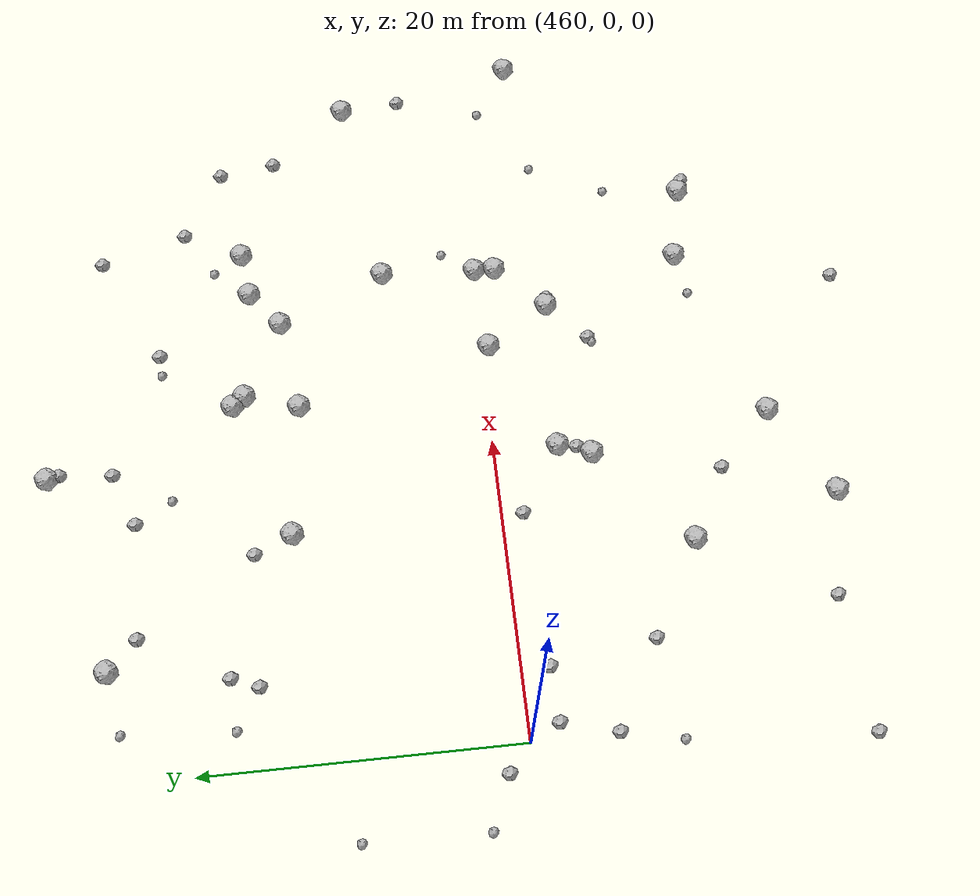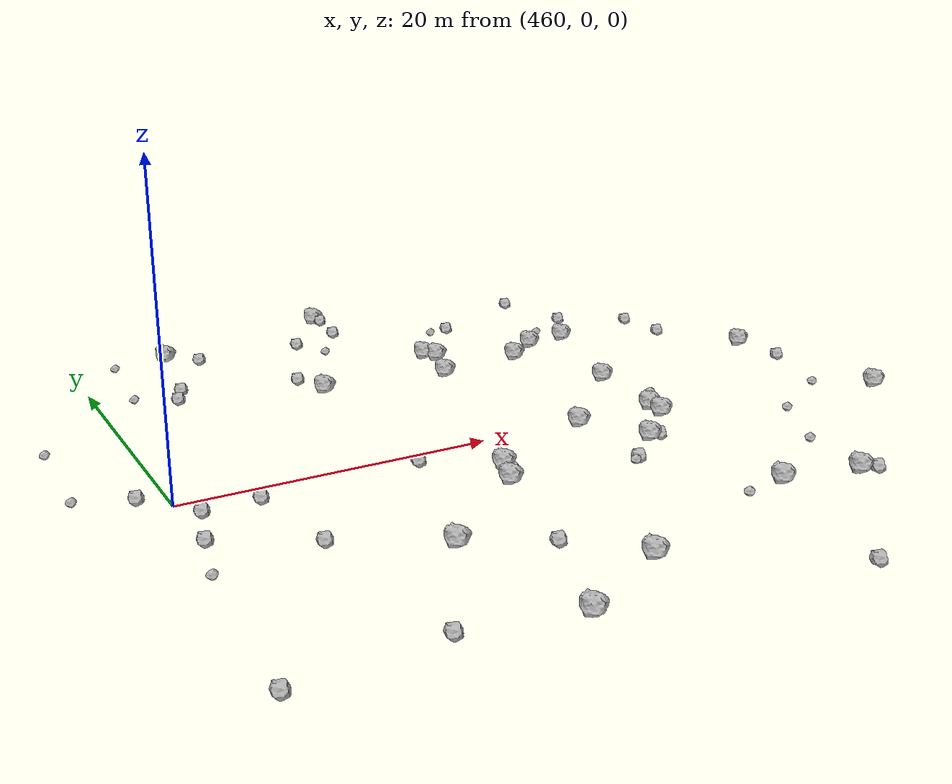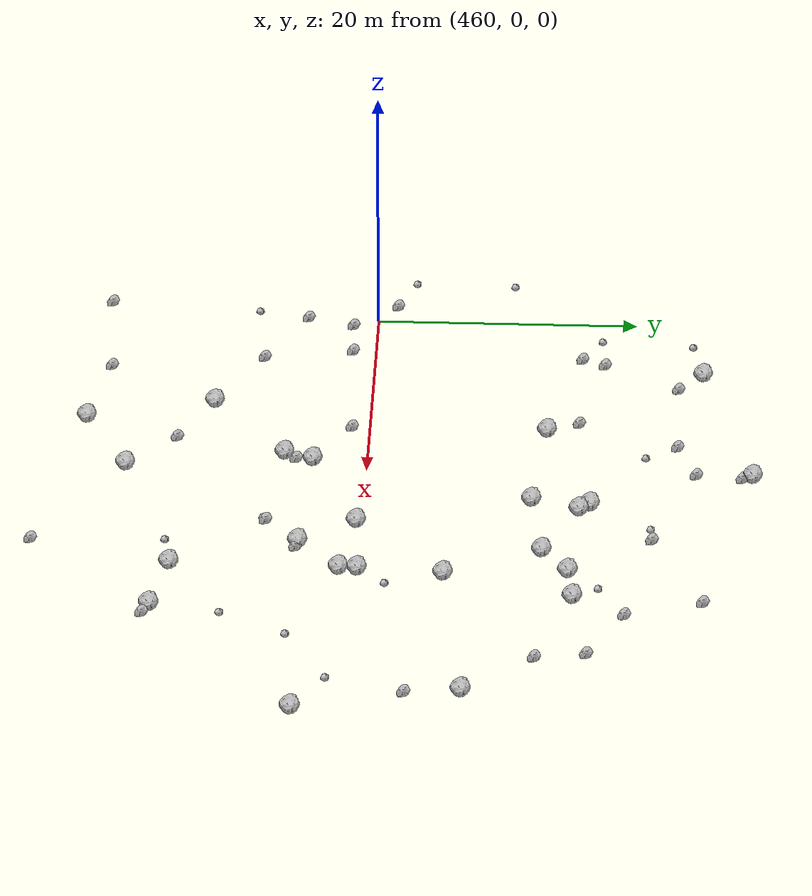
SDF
<sdf version="1.6">
 <world name="default">
  <include><uri>model://sun</uri></include>
  <model name="rock1_12_4">
   <include><uri>model://rock1</uri><pose>486.86013838064434 -0.4884319019038159 0.5 0 0 0</pose></include>
  </model>
  <model name="rock1_12_5">
   <include><uri>model://rock1</uri><pose>489.9266210349943 13.156496895798334 0.5 0 0 0</pose></include>
  </model>
  <model name="rock1_12_6">
   <include><uri>model://rock1</uri><pose>492.69744876082746 -0.17168924354060877 0.5 0 0 0</pose></include>
  </model>
  <model name="rock1_12_7">
   <include><uri>model://rock1</uri><pose>471.8873917272419 -11.869708311634305 0.5 0 0 0</pose></include>
  </model>
  <model name="rock1_12_8">
   <include><uri>model://rock1</uri><pose>492.6668185431703 -1.520162124362482 0.5 0 0 0</pose></include>
  </model>
  <model name="rock1_12_9">
   <include><uri>model://rock1</uri><pose>480.11751242205946 28.647174808679175 0.5 0 0 0</pose></include>
  </model>
  <model name="rock1_12_10">
   <include><uri>model://rock1</uri><pose>484.10376513091296 16.608469072448358 0.5 0 0 0</pose></include>
  </model>
  <model name="rock1_12_11">
   <include><uri>model://rock1</uri><pose>479.19427388841706 -4.083835757369894 0.5 0 0 0</pose></include>
  </model>
  <model name="rock1_12_12">
   <include><uri>model://rock1</uri><pose>480.3020505857839 -17.982167305948693 0.5 0 0 0</pose></include>
  </model>
  <model name="rock1_12_13">
   <include><uri>model://rock1</uri><pose>483.67944610007874 12.299751930897813 0.5 0 0 0</pose></include>
  </model>
  <model name="rock1_12_14">
   <include><uri>model://rock1</uri><pose>484.7572386601377 15.806579248530717 0.5 0 0 0</pose></include>
  </model>
  <model name="rock1_12_15">
   <include><uri>model://rock1</uri><pose>497.57591105705797 -14.879943452197399 0.5 0 0 0</pose></include>
  </model>
  <model name="rock1_12_16">
   <include><uri>model://rock1</uri><pose>478.43266873173764 -6.219736181007235 0.5 0 0 0</pose></include>
  </model>
  <model name="rock1_12_17">
   <include><uri>model://rock1</uri><pose>474.23405098866596 -21.386550135527926 0.5 0 0 0</pose></include>
  </model>
  <model name="rock1_12_18">
   <include><uri>model://rock1</uri><pose>509.1315431970535 -4.093376335242791 0.5 0 0 0</pose></include>
  </model>
  <model name="rock1_12_19">
   <include><uri>model://rock1</uri><pose>492.4978948183913 -13.825215360432043 0.5 0 0 0</pose></include>
  </model>
  <model name="rock1_12_20">
   <include><uri>model://rock1</uri><pose>493.04898669116267 6.072256623693711 0.5 0 0 0</pose></include>
  </model>
  <model name="rock1_12_21">
   <include><uri>model://rock1</uri><pose>466.9574232103233 25.07708336453767 0.5 0 0 0</pose></include>
  </model>
  <model name="rock1_12_22">
   <include><uri>model://rock1</uri><pose>492.38183995053583 15.086371422241442 0.5 0 0 0</pose></include>
  </model>
  <model name="rock1_12_23">
   <include><uri>model://rock1</uri><pose>495.47810714464714 15.455572780520093 0.5 0 0 0</pose></include>
  </model>
  <model name="rock1_12_24">
   <include><uri>model://rock1</uri><pose>489.5284103466534 -4.643972139875039 0.5 0 0 0</pose></include>
  </model>
  <model name="rock1_12_25">
   <include><uri>model://rock1</uri><pose>474.7846756536542 13.302003145255583 0.5 0 0 0</pose></include>
  </model>
  <model name="rock1_12_26">
   <include><uri>model://rock1</uri><pose>506.70081921021176 7.7694887383581275 0.5 0 0 0</pose></include>
  </model>
  <model name="rock2_12_0">
   <include><uri>model://rock2</uri><pose>480.0037200437101 24.482251887338904 0.3 0 0 0</pose></include>
  </model>
  <model name="rock2_12_1">
   <include><uri>model://rock2</uri><pose>473.6615960071955 15.741094376574267 0.3 0 0 0</pose></include>
  </model>
  <model name="rock2_12_2">
   <include><uri>model://rock2</uri><pose>478.9931210423015 -5.307553029062639 0.3 0 0 0</pose></include>
  </model>
  <model name="rock2_12_3">
   <include><uri>model://rock2</uri><pose>502.62938403593625 12.87645318592103 0.3 0 0 0</pose></include>
  </model>
  <model name="rock2_12_4">
   <include><uri>model://rock2</uri><pose>489.84984073860346 -24.132883424461014 0.3 0 0 0</pose></include>
  </model>
  <model name="rock2_12_5">
   <include><uri>model://rock2</uri><pose>497.4281226294049 19.230064596435653 0.3 0 0 0</pose></include>
  </model>
  <model name="rock2_12_6">
   <include><uri>model://rock2</uri><pose>458.3159012975393 1.50071341923433 0.3 0 0 0</pose></include>
  </model>
  <model name="rock2_12_7">
   <include><uri>model://rock2</uri><pose>465.10573124230905 15.896042151713381 0.3 0 0 0</pose></include>
  </model>
  <model name="rock2_12_8">
   <include><uri>model://rock2</uri><pose>507.00123020133185 3.7979224079170066 0.3 0 0 0</pose></include>
  </model>
  <model name="rock2_12_9">
   <include><uri>model://rock2</uri><pose>498.44903598794946 -15.31101751046593 0.3 0 0 0</pose></include>
  </model>
  <model name="rock2_12_10">
   <include><uri>model://rock2</uri><pose>464.58531140124927 -1.7301887848371038 0.3 0 0 0</pose></include>
  </model>
  <model name="rock2_12_11">
   <include><uri>model://rock2</uri><pose>495.7260902794773 24.863900590392213 0.3 0 0 0</pose></include>
  </model>
  <model name="rock2_12_12">
   <include><uri>model://rock2</uri><pose>460.1342117293893 -5.36847049180647 0.3 0 0 0</pose></include>
  </model>
  <model name="rock2_12_13">
   <include><uri>model://rock2</uri><pose>476.46325997193077 23.118752942744848 0.3 0 0 0</pose></include>
  </model>
  <model name="rock2_12_14">
   <include><uri>model://rock2</uri><pose>458.53306309222717 -20.72054424095663 0.3 0 0 0</pose></include>
  </model>
  <model name="rock2_12_15">
   <include><uri>model://rock2</uri><pose>467.2879412829611 -20.05188574821552 0.3 0 0 0</pose></include>
  </model>
  <model name="rock2_12_16">
   <include><uri>model://rock2</uri><pose>468.87077179375177 23.212792177193812 0.3 0 0 0</pose></include>
  </model>
  <model name="rock2_12_17">
   <include><uri>model://rock2</uri><pose>461.078623156368 -1.852640744167612 0.3 0 0 0</pose></include>
  </model>
  <model name="rock2_12_18">
   <include><uri>model://rock2</uri><pose>488.2788033636078 21.206176222163634 0.3 0 0 0</pose></include>
  </model>
  <model name="rock2_12_19">
   <include><uri>model://rock2</uri><pose>476.55997732679936 -14.364384132371388 0.3 0 0 0</pose></include>
  </model>
  <model name="rock2_12_20">
   <include><uri>model://rock2</uri><pose>474.741921954402 -1.32926717204165 0.3 0 0 0</pose></include>
  </model>
  <model name="rock2_12_21">
   <include><uri>model://rock2</uri><pose>502.0918104663039 16.55351420191746 0.3 0 0 0</pose></include>
  </model>
  <model name="rock2_12_22">
   <include><uri>model://rock2</uri><pose>465.69910680666914 -8.448215210421207 0.3 0 0 0</pose></include>
  </model>
  <model name="rock2_12_23">
   <include><uri>model://rock2</uri><pose>480.32247040605785 27.899169565470608 0.3 0 0 0</pose></include>
  </model>
  <model name="rock2_12_24">
   <include><uri>model://rock2</uri><pose>490.1027534058356 -4.750942276787253 0.3 0 0 0</pose></include>
  </model>
  <model name="rock2_12_25">
   <include><uri>model://rock2</uri><pose>486.8398922643129 -7.119522644520938 0.3 0 0 0</pose></include>
  </model>
  <model name="rock2_12_26">
   <include><uri>model://rock2</uri><pose>465.8119111304164 17.613215641271154 0.3 0 0 0</pose></include>
  </model>
  <model name="rock3_12_0">
   <include><uri>model://rock3</uri><pose>454.9790238586743 2.827142170113163 0.2 0 0 0</pose></include>
  </model>
  <model name="rock3_12_1">
   <include><uri>model://rock3</uri><pose>459.2746632894839 -9.217270794870185 0.2 0 0 0</pose></include>
  </model>
  <model name="rock3_12_2">
   <include><uri>model://rock3</uri><pose>505.4414512964255 -1.8272672622013495 0.2 0 0 0</pose></include>
  </model>
  <model name="rock3_12_3">
   <include><uri>model://rock3</uri><pose>486.86616281434726 21.093086225158842 0.2 0 0 0</pose></include>
  </model>
  <model name="rock3_12_4">
   <include><uri>model://rock3</uri><pose>462.495551621732 17.384251025017868 0.2 0 0 0</pose></include>
  </model>
  <model name="rock3_12_5">
   <include><uri>model://rock3</uri><pose>462.9619940714785 24.33631796371663 0.2 0 0 0</pose></include>
  </model>
  <model name="rock3_12_6">
   <include><uri>model://rock3</uri><pose>486.46729501006956 -7.376214936334652 0.2 0 0 0</pose></include>
  </model>
  <model name="rock3_12_7">
   <include><uri>model://rock3</uri><pose>494.1487449864753 1.8912048245721067 0.2 0 0 0</pose></include>
  </model>
  <model name="rock3_12_8">
   <include><uri>model://rock3</uri><pose>498.12633653821257 -9.796366592427233 0.2 0 0 0</pose></include>
  </model>
  <model name="rock3_12_9">
   <include><uri>model://rock3</uri><pose>489.4829633113515 -14.349310978610841 0.2 0 0 0</pose></include>
  </model>
  <model name="rock3_12_10">
   <include><uri>model://rock3</uri><pose>500.47867671193353 -4.933968204076063 0.2 0 0 0</pose></include>
  </model>
  <model name="rock3_12_11">
   <include><uri>model://rock3</uri><pose>494.2564499258223 17.312140885436328 0.2 0 0 0</pose></include>
  </model>
  <model name="rock3_12_12">
   <include><uri>model://rock3</uri><pose>477.8394824546314 20.72752156499905 0.2 0 0 0</pose></include>
  </model>
  <model name="rock3_12_13">
   <include><uri>model://rock3</uri><pose>455.1080872565642 10.494096178851123 0.2 0 0 0</pose></include>
  </model>
 </world>
</sdf>
